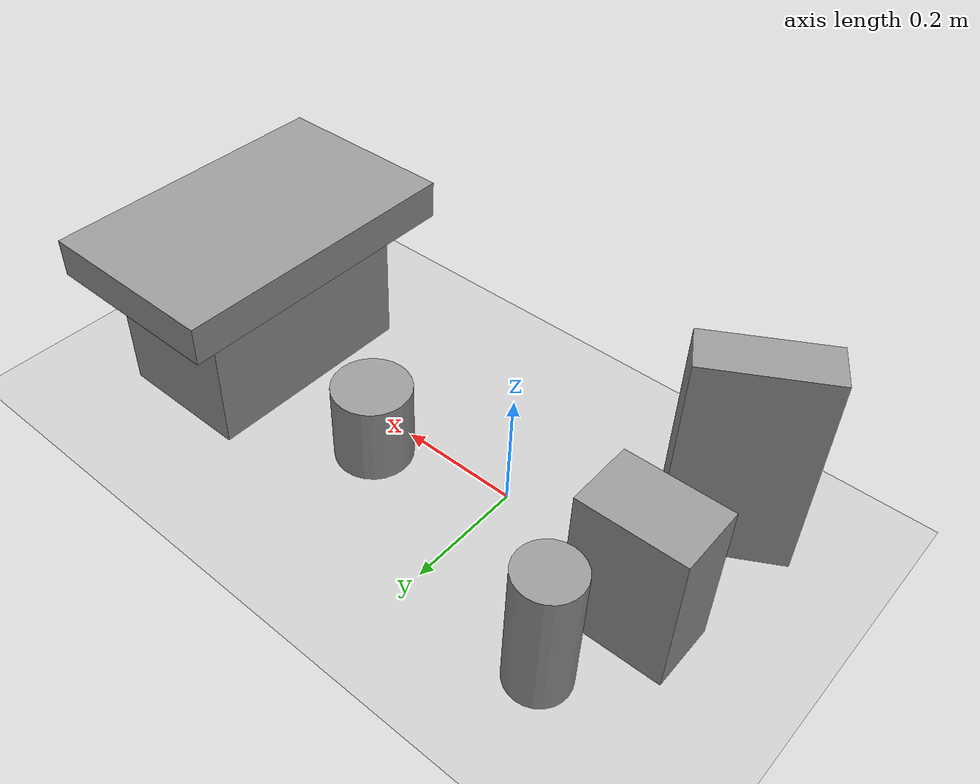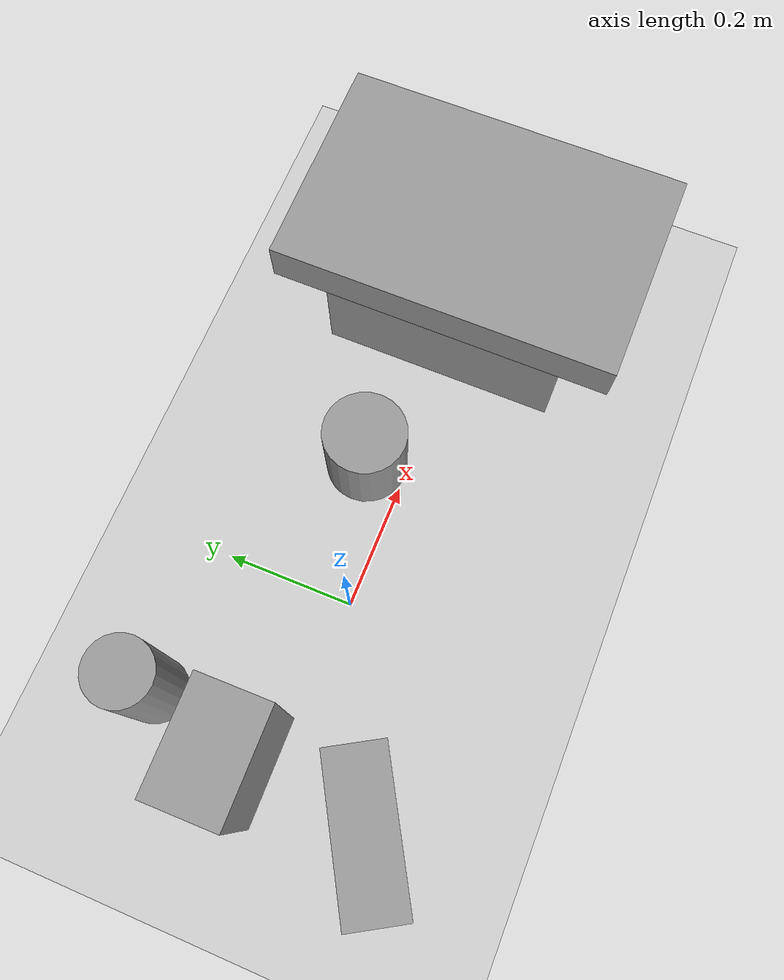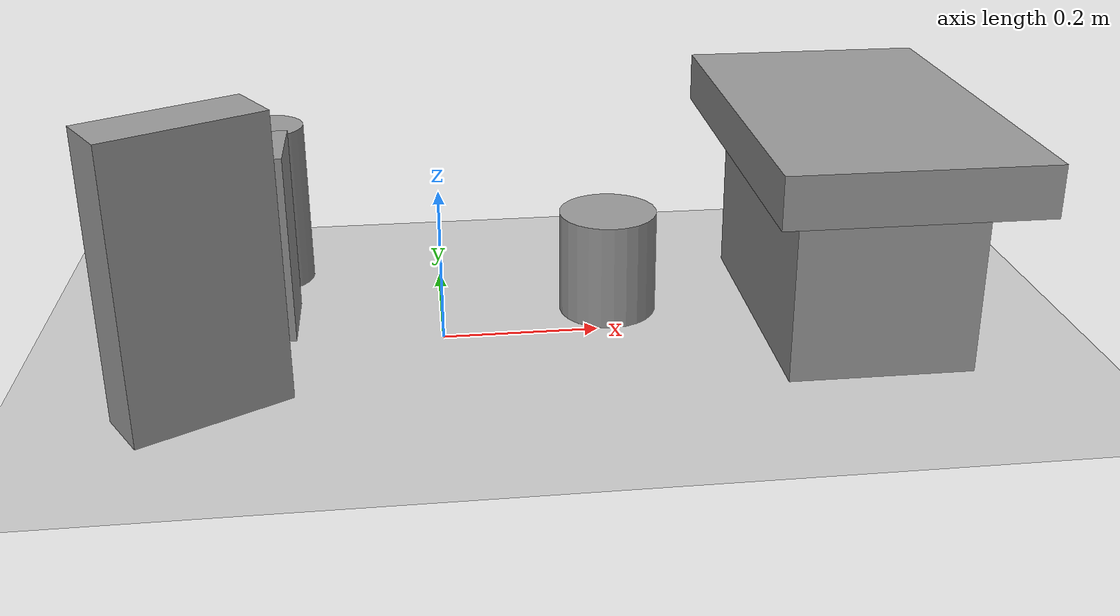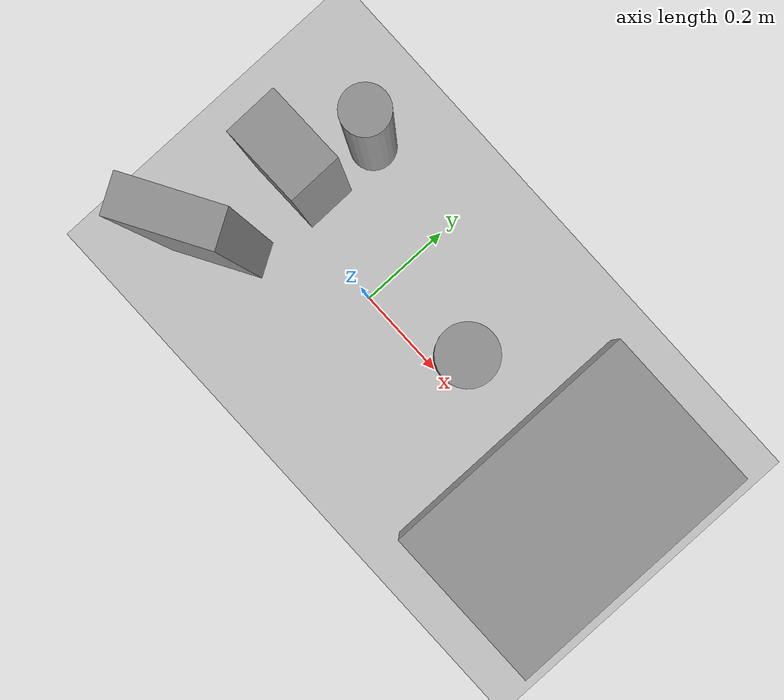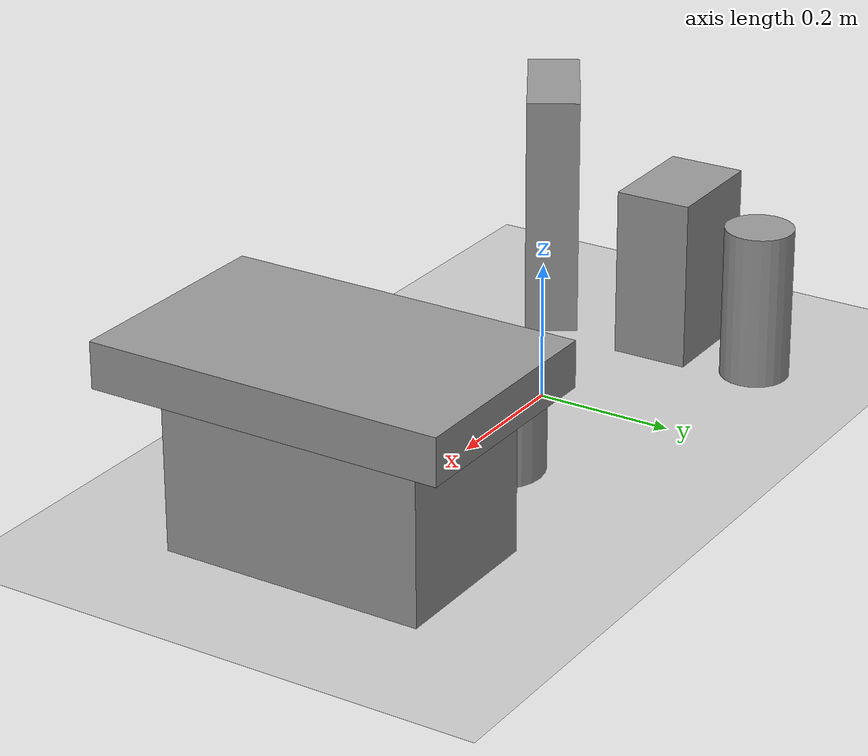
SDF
<sdf version="1.6">
 <world name="default">
  <light name="sun" type="directional">
   <pose>0 0 10 0 -0 0</pose>
   <diffuse>0.8 0.8 0.8 1</diffuse>
   <specular>0.1 0.1 0.1 1</specular>
   <attenuation>
    <range>1000</range>
    <constant>0.9</constant>
    <linear>0.01</linear>
    <quadratic>0.001</quadratic>
   </attenuation>
   <direction>-0.5 0.5 -1</direction>
  </light>
  <model name="ground_plane">
   <static>1</static>
   <link name="link">
    <collision name="collision">
     <geometry><plane><normal>0 0 1</normal><size>100 100</size></plane></geometry>
     <surface><friction><ode><mu>100</mu><mu2>50</mu2></ode></friction></surface>
    </collision>
    <visual name="visual">
     <cast_shadows>0</cast_shadows>
     <geometry><plane><normal>0 0 1</normal><size>100 100</size></plane></geometry>
     <material>
      <script><uri>file://media/materials/scripts/gazebo.material</uri><name>Gazebo/Grey</name></script>
     </material>
    </visual>
   </link>
  </model>
  <gravity>0 0 -9.8</gravity>
  <magnetic_field>6e-06 2.3e-05 -4.2e-05</magnetic_field>
  <atmosphere type="adiabatic"/>
  <physics name="default_physics" default="0" type="ode">
   <max_step_size>0.001</max_step_size>
   <real_time_factor>1</real_time_factor>
   <real_time_update_rate>1000</real_time_update_rate>
  </physics>
  <scene><ambient>0.4 0.4 0.4 1</ambient><background>0.7 0.7 0.7 1</background><shadows>1</shadows></scene>
  <spherical_coordinates>
   <surface_model>EARTH_WGS84</surface_model>
   <latitude_deg>0</latitude_deg>
   <longitude_deg>0</longitude_deg>
   <elevation>0</elevation>
   <heading_deg>0</heading_deg>
  </spherical_coordinates>
  <model name="unit_box_1">
   <pose>-0.283738 -0.152937 0.177614 1e-06 1e-06 0.529436</pose>
   <link name="link">
    <inertial>
     <mass>1</mass>
     <inertia>
      <ixx>0.166667</ixx>
      <ixy>0</ixy>
      <ixz>0</ixz>
      <iyy>0.166667</iyy>
      <iyz>0</iyz>
      <izz>0.166667</izz>
     </inertia>
    </inertial>
    <collision name="collision">
     <geometry><box><size>0.194033 0.077038 0.355229</size></box></geometry>
    </collision>
    <visual name="visual">
     <geometry><box><size>0.194033 0.077038 0.355229</size></box></geometry>
     <material>
      <script><name>Gazebo/Grey</name><uri>file://media/materials/scripts/gazebo.material</uri></script>
     </material>
    </visual>
   </link>
  </model>
  <model name="unit_box_2">
   <pose>-0.272409 0.066069 0.123769 -2e-06 3e-06 0.01224</pose>
   <link name="link">
    <inertial>
     <mass>1</mass>
     <inertia>
      <ixx>0.166667</ixx>
      <ixy>0</ixy>
      <ixz>0</ixz>
      <iyy>0.166667</iyy>
      <iyz>0</iyz>
      <izz>0.166667</izz>
     </inertia>
    </inertial>
    <collision name="collision"><geometry><box><size>0.167065 0.1121 0.247538</size></box></geometry></collision>
    <visual name="visual">
     <geometry><box><size>0.167065 0.1121 0.247538</size></box></geometry>
     <material>
      <script><name>Gazebo/Grey</name><uri>file://media/materials/scripts/gazebo.material</uri></script>
     </material>
    </visual>
   </link>
  </model>
  <model name="unit_cylinder_0">
   <pose>-0.227088 0.217772 0.112187 0 -0 0.017946</pose>
   <link name="link">
    <inertial>
     <mass>1</mass>
     <inertia><ixx>0.145833</ixx><ixy>0</ixy><ixz>0</ixz><iyy>0.145833</iyy><iyz>0</iyz><izz>0.125</izz></inertia>
    </inertial>
    <collision name="collision">
     <geometry><cylinder><radius>0.0497745</radius><length>0.224374</length></cylinder></geometry>
    </collision>
    <visual name="visual">
     <geometry><cylinder><radius>0.0497745</radius><length>0.224374</length></cylinder></geometry>
     <material>
      <script><name>Gazebo/Grey</name><uri>file://media/materials/scripts/gazebo.material</uri></script>
     </material>
    </visual>
   </link>
  </model>
  <model name="unit_cylinder_1">
   <pose>0.22162 0.06442 0.069553 0 -0 0</pose>
   <link name="link">
    <inertial>
     <mass>1</mass>
     <inertia><ixx>0.145833</ixx><ixy>0</ixy><ixz>0</ixz><iyy>0.145833</iyy><iyz>0</iyz><izz>0.125</izz></inertia>
    </inertial>
    <collision name="collision">
     <geometry><cylinder><radius>0.0643375</radius><length>0.139125</length></cylinder></geometry>
    </collision>
    <visual name="visual">
     <geometry><cylinder><radius>0.0643375</radius><length>0.139125</length></cylinder></geometry>
     <material>
      <script><name>Gazebo/Grey</name><uri>file://media/materials/scripts/gazebo.material</uri></script>
     </material>
    </visual>
   </link>
  </model>
  <model name="unit_box_3">
   <pose>0.527851 0.018479 0.113842 0 0 -0.000122</pose>
   <link name="link">
    <inertial>
     <mass>1</mass>
     <inertia>
      <ixx>0.166667</ixx>
      <ixy>0</ixy>
      <ixz>0</ixz>
      <iyy>0.166667</iyy>
      <iyz>0</iyz>
      <izz>0.166667</izz>
     </inertia>
    </inertial>
    <collision name="collision">
     <geometry><box><size>0.233423 0.376435 0.227683</size></box></geometry>
    </collision>
    <visual name="visual">
     <geometry><box><size>0.233423 0.376435 0.227683</size></box></geometry>
     <material>
      <script><name>Gazebo/Grey</name><uri>file://media/materials/scripts/gazebo.material</uri></script>
     </material>
    </visual>
   </link>
  </model>
  <model name="unit_box_4_0">
   <pose>0.529945 0.01214 0.259927 0 -0 0.000124</pose>
   <link name="link">
    <inertial>
     <mass>1</mass>
     <inertia>
      <ixx>0.166667</ixx>
      <ixy>0</ixy>
      <ixz>0</ixz>
      <iyy>0.166667</iyy>
      <iyz>0</iyz>
      <izz>0.166667</izz>
     </inertia>
    </inertial>
    <collision name="collision">
     <geometry><box><size>0.320579 0.506932 0.064487</size></box></geometry>
    </collision>
    <visual name="visual">
     <geometry><box><size>0.320579 0.506932 0.064487</size></box></geometry>
     <material>
      <script><name>Gazebo/Grey</name><uri>file://media/materials/scripts/gazebo.material</uri></script>
     </material>
    </visual>
   </link>
  </model>
 </world>
</sdf>
